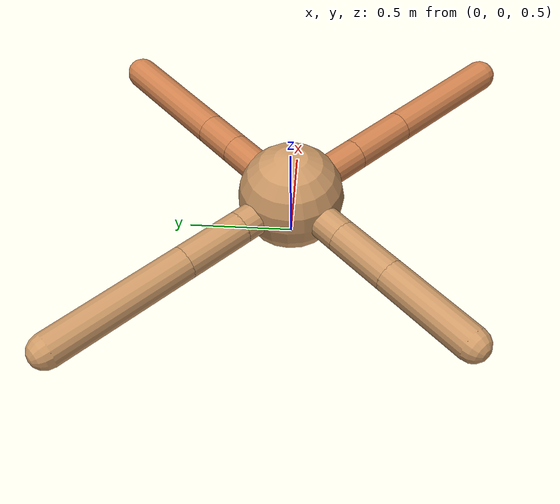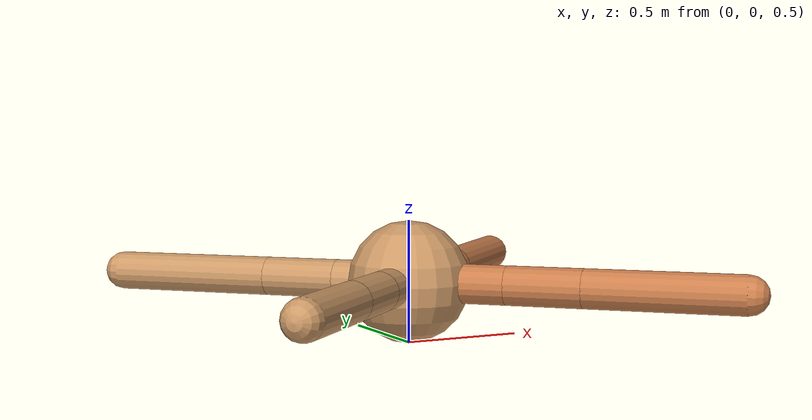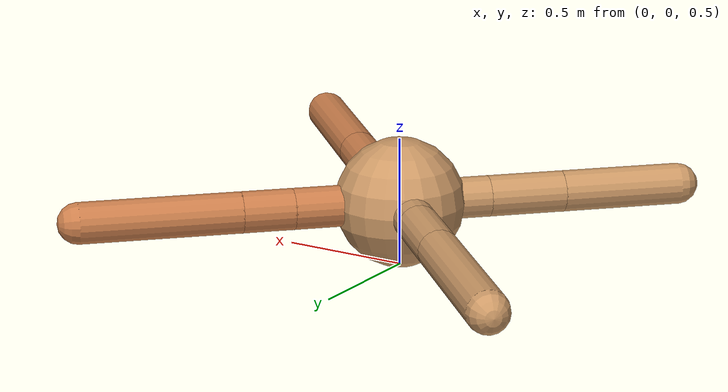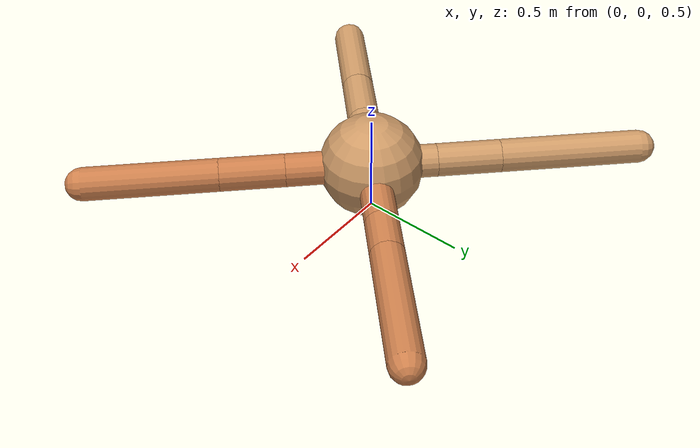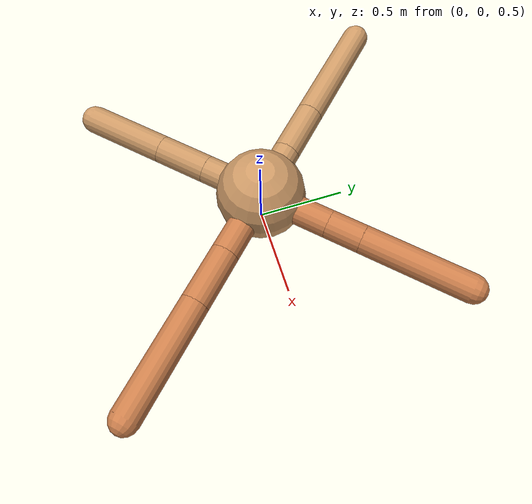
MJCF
<mujoco model="ant">
  <compiler angle="degree" coordinate="local" inertiafromgeom="true" />
  <option integrator="RK4" timestep="0.01" />
  <custom>
    <numeric data="0.0 0.0 0.55 1.0 0.0 0.0 0.0 0.0 1.0 0.0 -1.0 0.0 -1.0 0.0 1.0" name="init_qpos" />
  </custom>
  <default>
    <joint armature="1" damping="1" limited="true" />
    <geom conaffinity="0" condim="3" density="5.0" friction="1.5 0.1 0.1" margin="0.01" rgba="0.8 0.6 0.4 1" />
  </default>
  <worldbody>
    <body name="torso" pos="0 0 0.75">
      <geom name="torso_geom" pos="0 0 0" size="0.25" type="sphere" />

      <body name="front_left_leg" pos="0 0 0">
        <geom fromto="0.0 0.0 0.0 0.29290312404148117 0.29290312404148117 0.0" name="aux_1_geom" size="0.08" type="capsule" rgba=".8 .5 .3 1" />
        <body name="aux_1" pos="0.29290312404148117 0.29290312404148117 0.0">
          <joint axis="0 0 1" name="hip_1" pos="0.0 0.0 0.0" range="-40 40" type="hinge" />
          <geom fromto="0.0 0.0 0.0 0.14064326273804936 0.14064326273804936 0.0" name="left_leg_geom" size="0.08" type="capsule" rgba=".8 .5 .3 1" />
          <body pos="0.14064326273804936 0.14064326273804936 0.0" name="front_left_foot">
            <joint axis="-1 1 0" name="ankle_1" pos="0.0 0.0 0.0" range="30 100" type="hinge" />
            <geom fromto="0.0 0.0 0.0 0.4357714217897919 0.4357714217897919 0.0" name="left_ankle_geom" size="0.08" type="capsule" rgba=".8 .5 .3 1" />
          </body>
        </body>
      </body>
      <body name="front_right_leg" pos="0 0 0">
        <geom fromto="0.0 0.0 0.0 -0.22060078157842 0.22060078157842 0.0" name="aux_2_geom" size="0.08" type="capsule" />
        <body name="aux_2" pos="-0.22060078157842 0.22060078157842 0.0">
          <joint axis="0 0 1" name="hip_2" pos="0.0 0.0 0.0" range="-40 40" type="hinge" />
          <geom fromto="0.0 0.0 0.0 -0.21773338953505406 0.21773338953505406 0.0" name="right_leg_geom" size="0.08" type="capsule" />
          <body pos="-0.21773338953505406 0.21773338953505406 0.0" name="front_right_foot">
            <joint axis="1 1 0" name="ankle_2" pos="0.0 0.0 0.0" range="-100 -30" type="hinge" />
            <geom fromto="0.0 0.0 0.0 -0.4832919507903721 0.4832919507903721 0.0" name="right_ankle_geom" size="0.08" type="capsule" />
          </body>
        </body>
      </body>
      <body name="left_back_leg" pos="0 0 0">
        <geom fromto="0.0 0.0 0.0 -0.24545264843758288 -0.24545264843758288 0.0" name="aux_3_geom" size="0.08" type="capsule" />
        <body name="aux_3" pos="-0.24545264843758288 -0.24545264843758288 0.0">
          <joint axis="0 0 1" name="hip_3" pos="0.0 0.0 0.0" range="-40 40" type="hinge" />
          <geom fromto="0.0 0.0 0.0 -0.20850714688414165 -0.20850714688414165 0.0" name="back_leg_geom" size="0.08" type="capsule" />
          <body pos="-0.20850714688414165 -0.20850714688414165 0.0" name="left_back_foot">
            <joint axis="-1 1 0" name="ankle_3" pos="0.0 0.0 0.0" range="-100 -30" type="hinge" />
            <geom fromto="0.0 0.0 0.0 -0.3300324285954115 -0.3300324285954115 0.0" name="third_ankle_geom" size="0.08" type="capsule" />
          </body>
        </body>
      </body>
      <body name="right_back_leg" pos="0 0 0">
        <geom fromto="0.0 0.0 0.0 0.2909774513294217 -0.2909774513294217 0.0" name="aux_4_geom" size="0.08" type="capsule" rgba=".8 .5 .3 1" />
        <body name="aux_4" pos="0.2909774513294217 -0.2909774513294217 0.0">
          <joint axis="0 0 1" name="hip_4" pos="0.0 0.0 0.0" range="-40 40" type="hinge" />
          <geom fromto="0.0 0.0 0.0 0.22022768604750845 -0.22022768604750845 0.0" name="rightback_leg_geom" size="0.08" type="capsule" rgba=".8 .5 .3 1" />
          <body pos="0.22022768604750845 -0.22022768604750845 0.0" name="right_back_foot">
            <joint axis="1 1 0" name="ankle_4" pos="0.0 0.0 0.0" range="30 100" type="hinge" />
            <geom fromto="0.0 0.0 0.0 0.45011263555293407 -0.45011263555293407 0.0" name="fourth_ankle_geom" size="0.08" type="capsule" rgba=".8 .5 .3 1" />
          </body>
        </body>
      </body>
    </body>
  </worldbody>
  <actuator>
    <motor ctrllimited="true" ctrlrange="-1.0 1.0" joint="hip_4" gear="150" />
    <motor ctrllimited="true" ctrlrange="-1.0 1.0" joint="ankle_4" gear="150" />
    <motor ctrllimited="true" ctrlrange="-1.0 1.0" joint="hip_1" gear="150" />
    <motor ctrllimited="true" ctrlrange="-1.0 1.0" joint="ankle_1" gear="150" />
    <motor ctrllimited="true" ctrlrange="-1.0 1.0" joint="hip_2" gear="150" />
    <motor ctrllimited="true" ctrlrange="-1.0 1.0" joint="ankle_2" gear="150" />
    <motor ctrllimited="true" ctrlrange="-1.0 1.0" joint="hip_3" gear="150" />
    <motor ctrllimited="true" ctrlrange="-1.0 1.0" joint="ankle_3" gear="150" />
  </actuator>
</mujoco>
